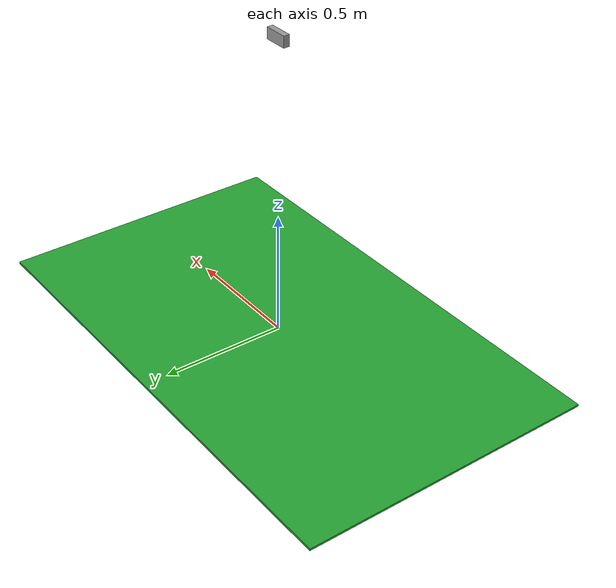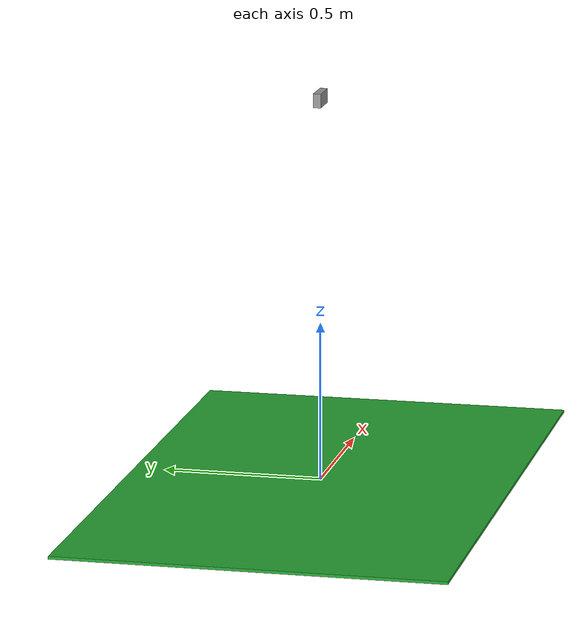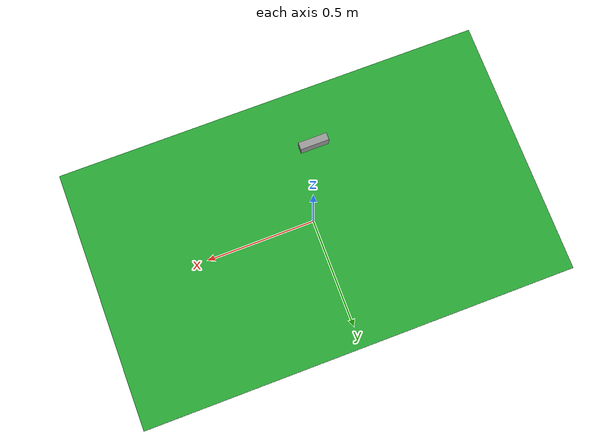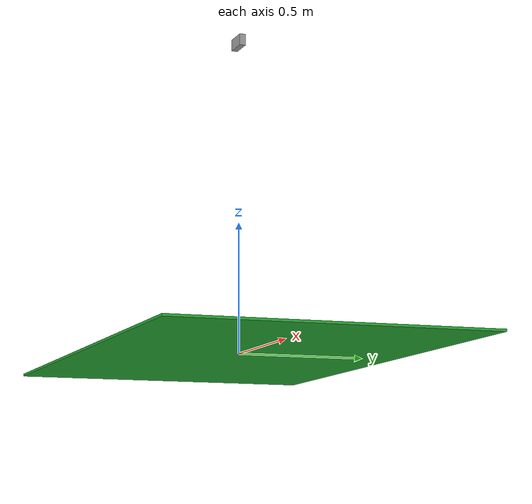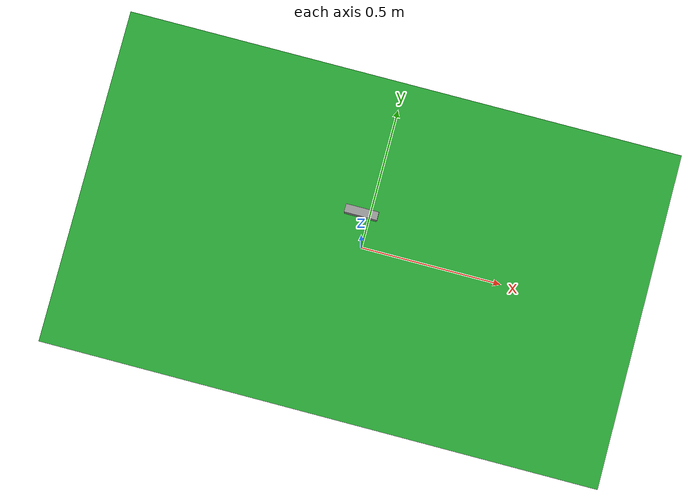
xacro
<?xml version="1.0" ?>

<robot name="track_trainer_bot" xmlns:xacro="http://ros.org/wiki/xacro">
  <xacro:include filename="$(find trainer_robot_description)/urdf/common_properties.xacro"/>

  <xacro:property name="base_track_width" value="1.2" /> <!-- Base -->
  <xacro:property name="base_track_length" value="2" /> <!-- Base -->
  <xacro:property name="base_track_height" value="0.009" /> <!-- Base -->
  <xacro:property name="track_height" value="1.2" /> <!-- track -->
  <xacro:property name="camera_width"  value="0.044" /> <!-- camera -->
  <xacro:property name="camera_length" value="0.095" /> <!-- camera -->
  <xacro:property name="camera_height" value="0.024" /> <!-- camera -->

  <joint name="base_track_joint" type="fixed">
    <parent link="world"/>
    <child link="track"/>
    <origin xyz="0.0 0.0 0" rpy="0 0 0"/>
  </joint>
  <link name="world"/>

  <link name="track">
    <visual>
      <origin xyz="0 0 -${base_track_height/2}" rpy="0 0.0 0"/>
      <geometry>
        <mesh filename="package://trainer_robot_description/meshes/base_track.dae"/>
      </geometry>
      <material name="green"/>
    </visual>

    <collision>
      <origin xyz="0 0 -${base_track_height/2}" rpy="0 0.0 0"/>
      <geometry>
        <box size="${base_track_length} ${base_track_width} ${base_track_height}"/>
      </geometry>
      <material name="green"/>
    </collision>
    <inertial>
      <origin xyz="0 0 -${base_track_height/2}" rpy="0 0.0 0"/>
      <mass value="50.00000000"/>
      <inertia ixx="7.90866056" ixy="0.00000006" ixz="0.00000000" iyy="7.90866060" iyz="0.00000000" izz="2.48398783"/>
    </inertial>
  </link>

  <joint name="camera_joint" type="fixed">
    <parent link="track"/>
    <child link="camera_link"/>
    <origin xyz="0.0 0.0 ${track_height+base_track_height}" rpy="1.57 1.57 0"/>
  </joint>

  <link name="camera_link">
    <visual>
      <origin xyz="0 0 0.0" rpy="0 0.0 0"/>
      <geometry>
        <box size="${camera_width} ${camera_length} ${camera_height}"/>
      </geometry>
      <material name="grey"/>
    </visual>

    <collision>
      <origin xyz="0 0 0.0" rpy="0 0.0 0"/>
      <geometry>
        <box size="${camera_width} ${camera_length} ${camera_height}"/>
      </geometry>
      <material name="grey"/>
    </collision>
    <inertial>
      <origin xyz="0 0 0.0" rpy="0 0.0 0"/>
      <mass value="0.5"/>
      <inertia ixx="7.90866056" ixy="0.00000006" ixz="0.00000000" iyy="7.90866060" iyz="0.00000000" izz="2.48398783"/>
    </inertial>
  </link>

  <!-- camera -->
  <gazebo reference="camera_link">
    <sensor type="camera" name="camera">
      <update_rate>30.0</update_rate>
      <visualize>false</visualize>
      <camera name="head">
        <horizontal_fov>1.36136</horizontal_fov>
        <aspect_ratio>1.8</aspect_ratio>
        <image>
          <width>1080</width>
          <height>720</height>
          <format>R8G8B8</format>
        </image>
        <clip>
          <near>0.02</near>
          <far>300</far>
        </clip>
        <noise>
          <type>gaussian</type>
          <!-- Noise is sampled independently per pixel on each frame.
               That pixel's noise value is added to each of its color
               channels, which at that point lie in the range [0,1]. -->
          <mean>0.0</mean>
          <stddev>0.007</stddev>
        </noise>
      </camera>
      <plugin name="camera_controller" filename="libgazebo_ros_camera.so">
        <alwaysOn>true</alwaysOn>
        <updateRate>0.0</updateRate>
        <cameraName>/camera</cameraName>
        <imageTopicName>image_raw</imageTopicName>
        <cameraInfoTopicName>camera_info</cameraInfoTopicName>
        <frameName>camera_link</frameName>
        <distortionK1>0.11480806073904032</distortionK1>
        <distortionK2>-0.21946985653851792</distortionK2>
        <distortionK3>0.11274677130853494</distortionK3>
        <distortionT1>0.0012002116999769957</distortionT1>
        <distortionT2>0.008564577708855225</distortionT2>
      </plugin>
    </sensor>
  </gazebo>

</robot>
